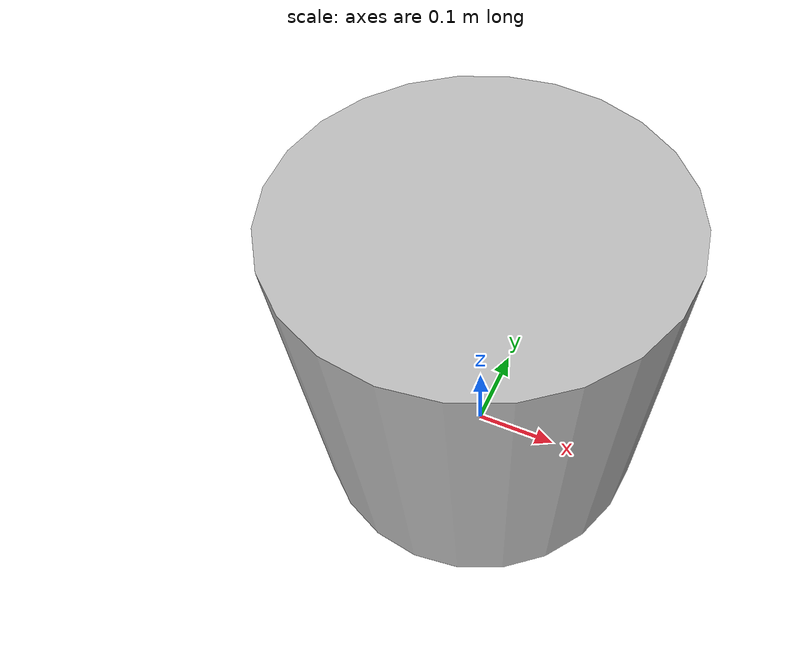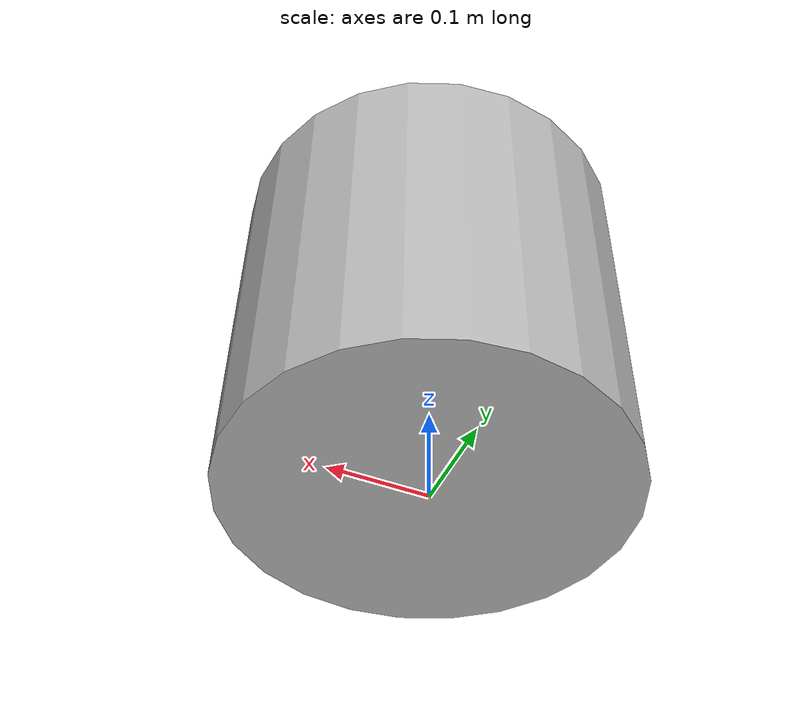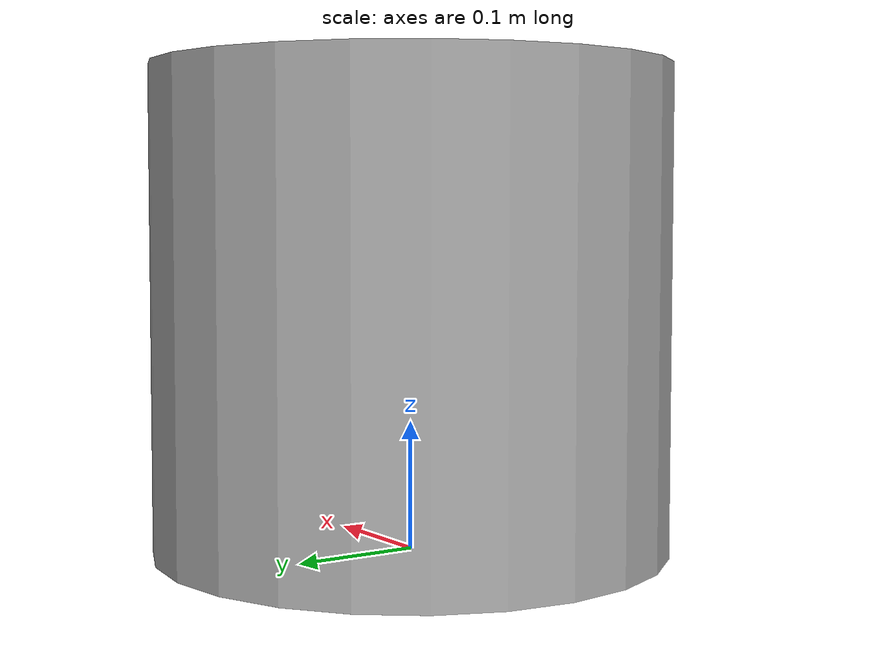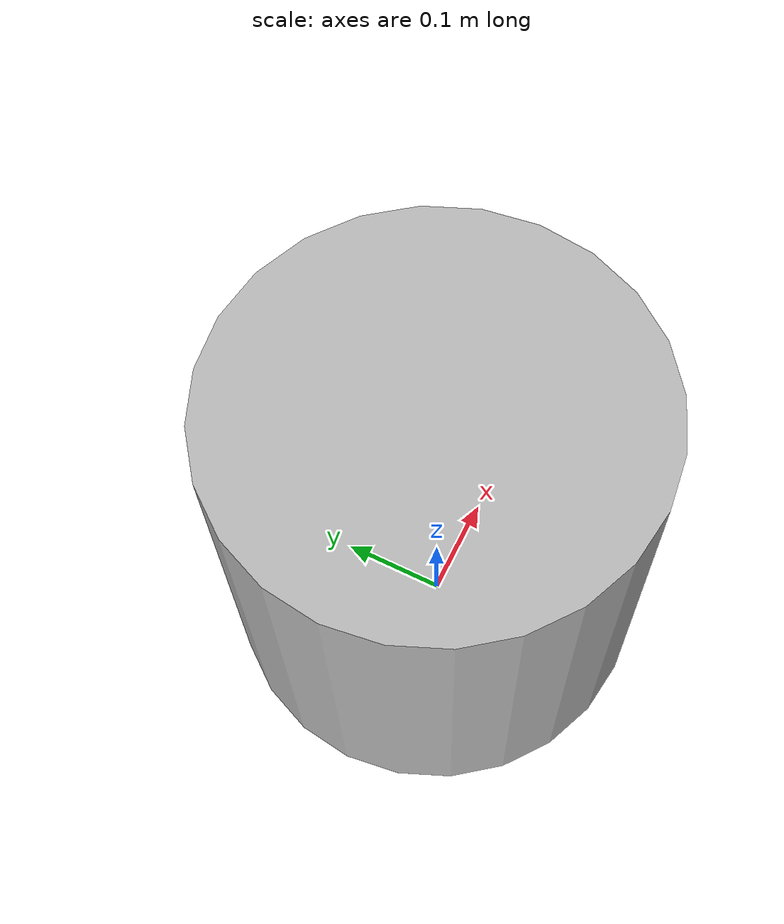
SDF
<?xml version="1.0" ?>
<sdf version="1.6">
  <model name="robotics_testlabs/plant">
    <link name="1">
      <collision name="1">
        <geometry>
          <cylinder>
            <length>0.375</length>
            <radius>0.2</radius>
          </cylinder>
        </geometry>
        <name>1</name>
      </collision>
      <visual name="1">
        <geometry>
          <cylinder>
            <length>0.375</length>
            <radius>0.2</radius>
          </cylinder>
        </geometry>
        <name>1</name>
      </visual>
      <pose>0 0 0.1875 0 0 0</pose>
      <name>1</name>
    </link>
    <static>true</static>
    <name>robotics_testlabs/plant</name>
  </model>
</sdf>
